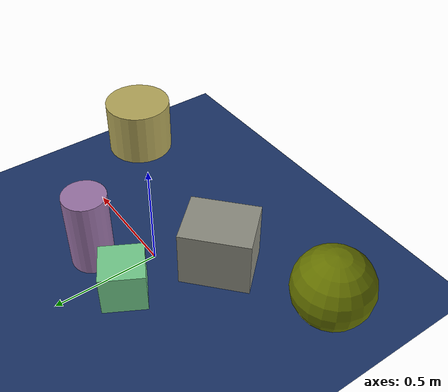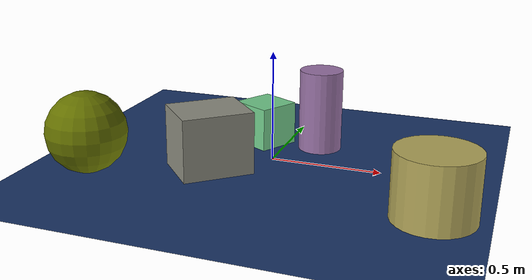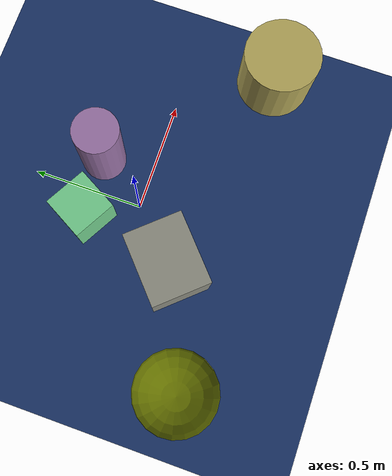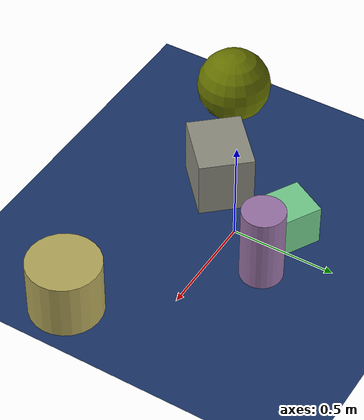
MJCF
<mujoco>
   <asset>
<texture type="skybox" builtin="gradient" rgb1="0.4 0.2 0.2" rgb2="0.2 0.6 0.8" width="256" height="256"/>
<texture name="gradient_0" builtin="gradient" rgb1="0.3 0.9 0.3" rgb2="0.9 0.0 1.0" width="200" height="200"/>
<texture name="checker_1" builtin="checker" rgb1="0.5 0.4 0.6" rgb2="0.9 0.9 0.1" width="200" height="200"/>
<texture name="checker_2" builtin="checker" rgb1="0.3 0.1 0.3" rgb2="0.8 1.0 0.7" width="200" height="200"/>
<texture name="checker_3" builtin="checker" rgb1="0.6 0.9 0.6" rgb2="0.3 0.7 0.5" width="200" height="200"/>
<texture name="gradient_4" builtin="gradient" rgb1="0.2 0.6 0.0" rgb2="0.6 0.3 0.0" width="200" height="200"/><material name="gradient_0_mat" reflectance="0" texture="gradient_0" texuniform="true"/>
<material name="checker_1_mat" reflectance="0" texrepeat="8 8" texture="checker_1" texuniform="false" />
<material name="checker_2_mat" reflectance="0" texrepeat="8 8" texture="checker_2" texuniform="false" />
<material name="checker_3_mat" reflectance="0" texrepeat="10 10" texture="checker_3" texuniform="false" />
<material name="gradient_4_mat" reflectance="0" texture="gradient_4" texuniform="true"/>
   </asset>

   <worldbody>
      <light diffuse=".9 .9 .9" pos="0 0 3" dir="0 0 -1"/>
     <geom type="plane" size="1 1 0.1" rgba="0.1 0.2 0.4 1"/>
<geom type="cylinder" pos="0.16 0.23 0.19" size="0.1 0.19 0.19" material="gradient_0_mat" euler="0 0 89" />
<geom type="cylinder" pos="0.78 -0.39 0.14" size="0.17 0.14 0.14" material="checker_1_mat" euler="0 0 73" />
<geom type="box" pos="-0.22 -0.21 0.14" size="0.16 0.13 0.14" material="checker_2_mat" euler="0 0 42" />
<geom type="box" pos="-0.11 0.22 0.1" size="0.1 0.1 0.1" material="checker_3_mat" euler="0 0 61" />
<geom type="sphere" pos="-0.71 -0.42 0.18" size="0.18 0.18 0.18" material="gradient_4_mat" euler="0 0 14" /><camera euler="60 0 180" fovy="60" name="camera1" pos="-0.2 -1.5 1"></camera>   </worldbody>
</mujoco>
